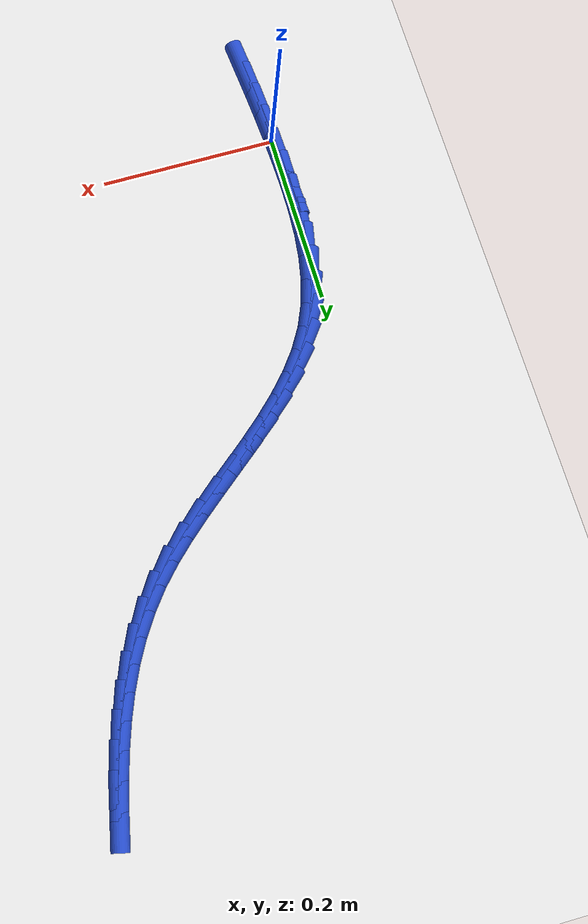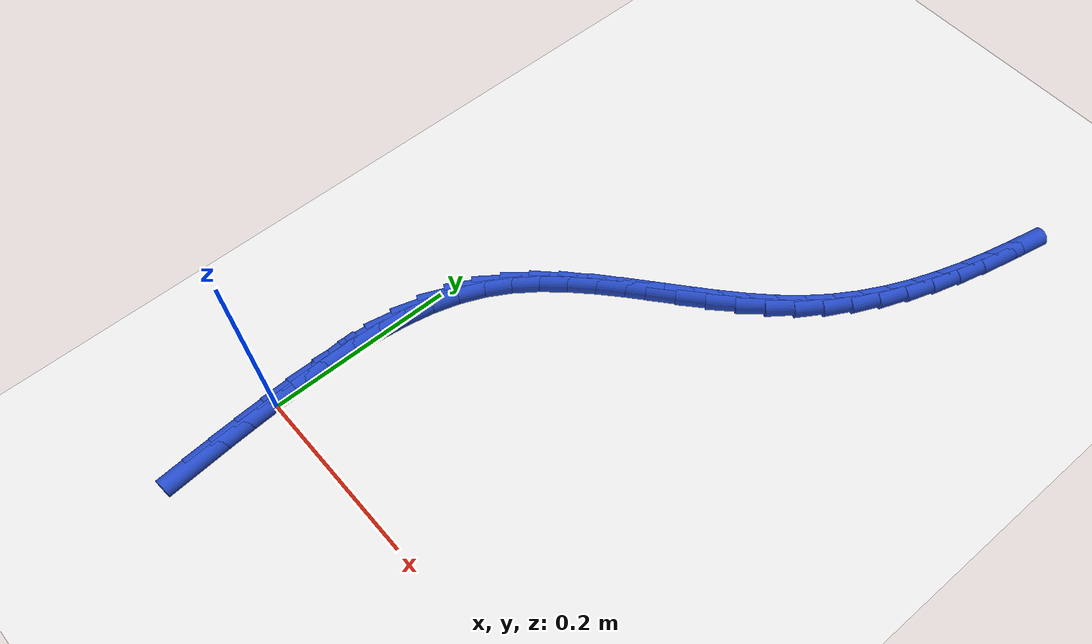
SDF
<sdf version="1.6">
 <world name="default">
  <model name="ground_plane">
   <static>1</static>
   <link name="link">
    <collision name="collision">
     <geometry><plane><normal>0 0 1</normal><size>100 100</size></plane></geometry>
     <surface><friction><ode><mu>100</mu><mu2>50</mu2></ode></friction></surface>
    </collision>
    <visual name="visual">
     <cast_shadows>0</cast_shadows>
     <geometry><plane><normal>0 0 1</normal><size>100 100</size></plane></geometry>
     <material>
      <script><uri>file://media/materials/scripts/gazebo.material</uri><name>Gazebo/WhiteGlow</name></script>
     </material>
    </visual>
   </link>
  </model>
  <model name="line">
   <link name="link_0">
    <pose>8.456776945386935e-18 -2.7755575615628914e-17 0.01 0 1.57 -1.5227607795798939</pose>
    <collision name="collision">
     <geometry><cylinder><radius>0.01</radius><length>0.08</length></cylinder></geometry>
    </collision>
    <visual name="visual">
     <material>
      <script><name>Gazebo/Blue</name><uri>file://media/materials/scripts/gazebo.material</uri></script>
     </material>
     <geometry><cylinder><radius>0.01</radius><length>0.08</length></cylinder></geometry>
    </visual>
   </link>
   <link name="link_1">
    <pose>-0.0014766795499560638 0.030717743223473117 0.01 0 1.57 -1.5451004872439487</pose>
    <collision name="collision">
     <geometry><cylinder><radius>0.01</radius><length>0.08</length></cylinder></geometry>
    </collision>
    <visual name="visual">
     <material>
      <script><name>Gazebo/Blue</name><uri>file://media/materials/scripts/gazebo.material</uri></script>
     </material>
     <geometry><cylinder><radius>0.01</radius><length>0.08</length></cylinder></geometry>
    </visual>
   </link>
   <link name="link_2">
    <pose>-0.0022717804618448533 0.06165372051326525 0.01 0 1.57 1.5617429754365542</pose>
    <collision name="collision">
     <geometry><cylinder><radius>0.01</radius><length>0.08</length></cylinder></geometry>
    </collision>
    <visual name="visual">
     <material>
      <script><name>Gazebo/Blue</name><uri>file://media/materials/scripts/gazebo.material</uri></script>
     </material>
     <geometry><cylinder><radius>0.01</radius><length>0.08</length></cylinder></geometry>
    </visual>
   </link>
   <link name="link_3">
    <pose>-0.001992421770971372 0.09250981428451353 0.01 0 1.57 1.5135489547175613</pose>
    <collision name="collision">
     <geometry><cylinder><radius>0.01</radius><length>0.08</length></cylinder></geometry>
    </collision>
    <visual name="visual">
     <material>
      <script><name>Gazebo/Blue</name><uri>file://media/materials/scripts/gazebo.material</uri></script>
     </material>
     <geometry><cylinder><radius>0.01</radius><length>0.08</length></cylinder></geometry>
    </visual>
   </link>
   <link name="link_4">
    <pose>-0.0002457225126406325 0.12298790695235498 0.01 0 1.57 1.4503525471026657</pose>
    <collision name="collision">
     <geometry><cylinder><radius>0.01</radius><length>0.08</length></cylinder></geometry>
    </collision>
    <visual name="visual">
     <material>
      <script><name>Gazebo/Blue</name><uri>file://media/materials/scripts/gazebo.material</uri></script>
     </material>
     <geometry><cylinder><radius>0.01</radius><length>0.08</length></cylinder></geometry>
    </visual>
   </link>
   <link name="link_5">
    <pose>0.003361198277842349 0.15278988093192675 0.01 0 1.57 1.3702515587760018</pose>
    <collision name="collision">
     <geometry><cylinder><radius>0.01</radius><length>0.08</length></cylinder></geometry>
    </collision>
    <visual name="visual">
     <material>
      <script><name>Gazebo/Blue</name><uri>file://media/materials/scripts/gazebo.material</uri></script>
     </material>
     <geometry><cylinder><radius>0.01</radius><length>0.08</length></cylinder></geometry>
    </visual>
   </link>
   <link name="link_6">
    <pose>0.009221221565172568 0.18161761863836592 0.01 0 1.57 1.2713883890087878</pose>
    <collision name="collision">
     <geometry><cylinder><radius>0.01</radius><length>0.08</length></cylinder></geometry>
    </collision>
    <visual name="visual">
     <material>
      <script><name>Gazebo/Blue</name><uri>file://media/materials/scripts/gazebo.material</uri></script>
     </material>
     <geometry><cylinder><radius>0.01</radius><length>0.08</length></cylinder></geometry>
    </visual>
   </link>
   <link name="link_7">
    <pose>0.01772722831404501 0.20917300248680967 0.01 0 1.57 1.1527355143739297</pose>
    <collision name="collision">
     <geometry><cylinder><radius>0.01</radius><length>0.08</length></cylinder></geometry>
    </collision>
    <visual name="visual">
     <material>
      <script><name>Gazebo/Blue</name><uri>file://media/materials/scripts/gazebo.material</uri></script>
     </material>
     <geometry><cylinder><radius>0.01</radius><length>0.08</length></cylinder></geometry>
    </visual>
   </link>
   <link name="link_8">
    <pose>0.029271236593928593 0.23515846916683084 0.01 0 1.57 1.02523981779138</pose>
    <collision name="collision">
     <geometry><cylinder><radius>0.01</radius><length>0.08</length></cylinder></geometry>
    </collision>
    <visual name="visual">
     <material>
      <script><name>Gazebo/Blue</name><uri>file://media/materials/scripts/gazebo.material</uri></script>
     </material>
     <geometry><cylinder><radius>0.01</radius><length>0.08</length></cylinder></geometry>
    </visual>
   </link>
   <link name="link_9">
    <pose>0.044004804190127124 0.25943091327241796 0.01 0 1.57 0.915575742328255</pose>
    <collision name="collision">
     <geometry><cylinder><radius>0.01</radius><length>0.08</length></cylinder></geometry>
    </collision>
    <visual name="visual">
     <material>
      <script><name>Gazebo/Blue</name><uri>file://media/materials/scripts/gazebo.material</uri></script>
     </material>
     <geometry><cylinder><radius>0.01</radius><length>0.08</length></cylinder></geometry>
    </visual>
   </link>
   <link name="link_10">
    <pose>0.0615115360696729 0.28221204973544534 0.01 0 1.57 0.8284876100115119</pose>
    <collision name="collision">
     <geometry><cylinder><radius>0.01</radius><length>0.08</length></cylinder></geometry>
    </collision>
    <visual name="visual">
     <material>
      <script><name>Gazebo/Blue</name><uri>file://media/materials/scripts/gazebo.material</uri></script>
     </material>
     <geometry><cylinder><radius>0.01</radius><length>0.08</length></cylinder></geometry>
    </visual>
   </link>
   <link name="link_11">
    <pose>0.0812930656886783 0.3037762472881533 0.01 0 1.57 0.7632030751500273</pose>
    <collision name="collision">
     <geometry><cylinder><radius>0.01</radius><length>0.08</length></cylinder></geometry>
    </collision>
    <visual name="visual">
     <material>
      <script><name>Gazebo/Blue</name><uri>file://media/materials/scripts/gazebo.material</uri></script>
     </material>
     <geometry><cylinder><radius>0.01</radius><length>0.08</length></cylinder></geometry>
    </visual>
   </link>
   <link name="link_12">
    <pose>0.10285102650325569 0.32439787466278236 0.01 0 1.57 0.718132737947095</pose>
    <collision name="collision">
     <geometry><cylinder><radius>0.01</radius><length>0.08</length></cylinder></geometry>
    </collision>
    <visual name="visual">
     <material>
      <script><name>Gazebo/Blue</name><uri>file://media/materials/scripts/gazebo.material</uri></script>
     </material>
     <geometry><cylinder><radius>0.01</radius><length>0.08</length></cylinder></geometry>
    </visual>
   </link>
   <link name="link_13">
    <pose>0.12568705196951738 0.34435130059157315 0.01 0 1.57 0.6917275055884001</pose>
    <collision name="collision">
     <geometry><cylinder><radius>0.01</radius><length>0.08</length></cylinder></geometry>
    </collision>
    <visual name="visual">
     <material>
      <script><name>Gazebo/Blue</name><uri>file://media/materials/scripts/gazebo.material</uri></script>
     </material>
     <geometry><cylinder><radius>0.01</radius><length>0.08</length></cylinder></geometry>
    </visual>
   </link>
   <link name="link_14">
    <pose>0.14930277554357585 0.36391089380676617 0.01 0 1.57 0.6829154623494383</pose>
    <collision name="collision">
     <geometry><cylinder><radius>0.01</radius><length>0.08</length></cylinder></geometry>
    </collision>
    <visual name="visual">
     <material>
      <script><name>Gazebo/Blue</name><uri>file://media/materials/scripts/gazebo.material</uri></script>
     </material>
     <geometry><cylinder><radius>0.01</radius><length>0.08</length></cylinder></geometry>
    </visual>
   </link>
   <link name="link_15">
    <pose>0.17319983068154324 0.38335102304060165 0.01 0 1.57 0.6912811827394161</pose>
    <collision name="collision">
     <geometry><cylinder><radius>0.01</radius><length>0.08</length></cylinder></geometry>
    </collision>
    <visual name="visual">
     <material>
      <script><name>Gazebo/Blue</name><uri>file://media/materials/scripts/gazebo.material</uri></script>
     </material>
     <geometry><cylinder><radius>0.01</radius><length>0.08</length></cylinder></geometry>
    </visual>
   </link>
   <link name="link_16">
    <pose>0.1968798508395321 0.4029460570253205 0.01 0 1.57 0.7171075780058435</pose>
    <collision name="collision">
     <geometry><cylinder><radius>0.01</radius><length>0.08</length></cylinder></geometry>
    </collision>
    <visual name="visual">
     <material>
      <script><name>Gazebo/Blue</name><uri>file://media/materials/scripts/gazebo.material</uri></script>
     </material>
     <geometry><cylinder><radius>0.01</radius><length>0.08</length></cylinder></geometry>
    </visual>
   </link>
   <link name="link_17">
    <pose>0.21984446947365482 0.42297036449316294 0.01 0 1.57 0.7613225484306678</pose>
    <collision name="collision">
     <geometry><cylinder><radius>0.01</radius><length>0.08</length></cylinder></geometry>
    </collision>
    <visual name="visual">
     <material>
      <script><name>Gazebo/Blue</name><uri>file://media/materials/scripts/gazebo.material</uri></script>
     </material>
     <geometry><cylinder><radius>0.01</radius><length>0.08</length></cylinder></geometry>
    </visual>
   </link>
   <link name="link_18">
    <pose>0.24159532004002357 0.4436983141763696 0.01 0 1.57 0.8253160443918094</pose>
    <collision name="collision">
     <geometry><cylinder><radius>0.01</radius><length>0.08</length></cylinder></geometry>
    </collision>
    <visual name="visual">
     <material>
      <script><name>Gazebo/Blue</name><uri>file://media/materials/scripts/gazebo.material</uri></script>
     </material>
     <geometry><cylinder><radius>0.01</radius><length>0.08</length></cylinder></geometry>
    </visual>
   </link>
   <link name="link_19">
    <pose>0.2616340359947508 0.46540427480718094 0.01 0 1.57 0.9069009901010257</pose>
    <collision name="collision">
     <geometry><cylinder><radius>0.01</radius><length>0.08</length></cylinder></geometry>
    </collision>
    <visual name="visual">
     <material>
      <script><name>Gazebo/Blue</name><uri>file://media/materials/scripts/gazebo.material</uri></script>
     </material>
     <geometry><cylinder><radius>0.01</radius><length>0.08</length></cylinder></geometry>
    </visual>
   </link>
   <link name="link_20">
    <pose>0.2795564527115686 0.4883122586597587 0.01 0 1.57 0.9886346267813351</pose>
    <collision name="collision">
     <geometry><cylinder><radius>0.01</radius><length>0.08</length></cylinder></geometry>
    </collision>
    <visual name="visual">
     <material>
      <script><name>Gazebo/Blue</name><uri>file://media/materials/scripts/gazebo.material</uri></script>
     </material>
     <geometry><cylinder><radius>0.01</radius><length>0.08</length></cylinder></geometry>
    </visual>
   </link>
   <link name="link_21">
    <pose>0.2954142285881841 0.5124026138284027 0.01 0 1.57 1.063883537466776</pose>
    <collision name="collision">
     <geometry><cylinder><radius>0.01</radius><length>0.08</length></cylinder></geometry>
    </collision>
    <visual name="visual">
     <material>
      <script><name>Gazebo/Blue</name><uri>file://media/materials/scripts/gazebo.material</uri></script>
     </material>
     <geometry><cylinder><radius>0.01</radius><length>0.08</length></cylinder></geometry>
    </visual>
   </link>
   <link name="link_22">
    <pose>0.3093967064856879 0.5375820879746012 0.01 0 1.57 1.1316185422971006</pose>
    <collision name="collision">
     <geometry><cylinder><radius>0.01</radius><length>0.08</length></cylinder></geometry>
    </collision>
    <visual name="visual">
     <material>
      <script><name>Gazebo/Blue</name><uri>file://media/materials/scripts/gazebo.material</uri></script>
     </material>
     <geometry><cylinder><radius>0.01</radius><length>0.08</length></cylinder></geometry>
    </visual>
   </link>
   <link name="link_23">
    <pose>0.3216932583514957 0.5637574132114931 0.01 0 1.57 1.1912825503669429</pose>
    <collision name="collision">
     <geometry><cylinder><radius>0.01</radius><length>0.08</length></cylinder></geometry>
    </collision>
    <visual name="visual">
     <material>
      <script><name>Gazebo/Blue</name><uri>file://media/materials/scripts/gazebo.material</uri></script>
     </material>
     <geometry><cylinder><radius>0.01</radius><length>0.08</length></cylinder></geometry>
    </visual>
   </link>
   <link name="link_24">
    <pose>0.3324932561330238 0.590835321652218 0.01 0 1.57 1.2426991619687908</pose>
    <collision name="collision">
     <geometry><cylinder><radius>0.01</radius><length>0.08</length></cylinder></geometry>
    </collision>
    <visual name="visual">
     <material>
      <script><name>Gazebo/Blue</name><uri>file://media/materials/scripts/gazebo.material</uri></script>
     </material>
     <geometry><cylinder><radius>0.01</radius><length>0.08</length></cylinder></geometry>
    </visual>
   </link>
   <link name="link_25">
    <pose>0.3419860717776878 0.6187225454099143 0.01 0 1.57 1.2859590976979571</pose>
    <collision name="collision">
     <geometry><cylinder><radius>0.01</radius><length>0.08</length></cylinder></geometry>
    </collision>
    <visual name="visual">
     <material>
      <script><name>Gazebo/Blue</name><uri>file://media/materials/scripts/gazebo.material</uri></script>
     </material>
     <geometry><cylinder><radius>0.01</radius><length>0.08</length></cylinder></geometry>
    </visual>
   </link>
   <link name="link_26">
    <pose>0.3503610772329039 0.6473258165977218 0.01 0 1.57 1.3213125501815395</pose>
    <collision name="collision">
     <geometry><cylinder><radius>0.01</radius><length>0.08</length></cylinder></geometry>
    </collision>
    <visual name="visual">
     <material>
      <script><name>Gazebo/Blue</name><uri>file://media/materials/scripts/gazebo.material</uri></script>
     </material>
     <geometry><cylinder><radius>0.01</radius><length>0.08</length></cylinder></geometry>
    </visual>
   </link>
   <link name="link_27">
    <pose>0.35780764444608765 0.6765518673287787 0.01 0 1.57 1.3490820929666452</pose>
    <collision name="collision">
     <geometry><cylinder><radius>0.01</radius><length>0.08</length></cylinder></geometry>
    </collision>
    <visual name="visual">
     <material>
      <script><name>Gazebo/Blue</name><uri>file://media/materials/scripts/gazebo.material</uri></script>
     </material>
     <geometry><cylinder><radius>0.01</radius><length>0.08</length></cylinder></geometry>
    </visual>
   </link>
   <link name="link_267">
    <pose>0.006637465164022607 -0.08964539552963795 0.01 0 1.57 -1.48282398099189</pose>
    <collision name="collision">
     <geometry><cylinder><radius>0.01</radius><length>0.08</length></cylinder></geometry>
    </collision>
    <visual name="visual">
     <material>
      <script><name>Gazebo/Blue</name><uri>file://media/materials/scripts/gazebo.material</uri></script>
     </material>
     <geometry><cylinder><radius>0.01</radius><length>0.08</length></cylinder></geometry>
    </visual>
   </link>
   <link name="link_268">
    <pose>0.004033019846504613 -0.060116534976911766 0.01 0 1.57 -1.4974973467778407</pose>
    <collision name="collision">
     <geometry><cylinder><radius>0.01</radius><length>0.08</length></cylinder></geometry>
    </collision>
    <visual name="visual">
     <material>
      <script><name>Gazebo/Blue</name><uri>file://media/materials/scripts/gazebo.material</uri></script>
     </material>
     <geometry><cylinder><radius>0.01</radius><length>0.08</length></cylinder></geometry>
    </visual>
   </link>
   <link name="link_269">
    <pose>0.001841183309724678 -0.03026741920583773 0.01 0 1.57 -1.5100406569428366</pose>
    <collision name="collision">
     <geometry><cylinder><radius>0.01</radius><length>0.08</length></cylinder></geometry>
    </collision>
    <visual name="visual">
     <material>
      <script><name>Gazebo/Blue</name><uri>file://media/materials/scripts/gazebo.material</uri></script>
     </material>
     <geometry><cylinder><radius>0.01</radius><length>0.08</length></cylinder></geometry>
    </visual>
   </link>
   <link name="link_270">
    <pose>1.8214596497756474e-17 -1.8041124150158794e-16 0.01 0 1.57 -1.5204070661487101</pose>
    <collision name="collision">
     <geometry><cylinder><radius>0.01</radius><length>0.08</length></cylinder></geometry>
    </collision>
    <visual name="visual">
     <material>
      <script><name>Gazebo/Blue</name><uri>file://media/materials/scripts/gazebo.material</uri></script>
     </material>
     <geometry><cylinder><radius>0.01</radius><length>0.08</length></cylinder></geometry>
    </visual>
   </link>
   <link name="link_271">
    <pose>-0.0015524856363523963 0.03078377085702019 0.01 0 1.57 -1.5285978015742616</pose>
    <collision name="collision">
     <geometry><cylinder><radius>0.01</radius><length>0.08</length></cylinder></geometry>
    </collision>
    <visual name="visual">
     <material>
      <script><name>Gazebo/Blue</name><uri>file://media/materials/scripts/gazebo.material</uri></script>
     </material>
     <geometry><cylinder><radius>0.01</radius><length>0.08</length></cylinder></geometry>
    </visual>
   </link>
   <link name="link_272">
    <pose>-0.0028782291530154262 0.06218194158163998 0.01 0 1.57 -1.5245421221733095</pose>
    <collision name="collision">
     <geometry><cylinder><radius>0.01</radius><length>0.08</length></cylinder></geometry>
    </collision>
    <visual name="visual">
     <material>
      <script><name>Gazebo/Blue</name><uri>file://media/materials/scripts/gazebo.material</uri></script>
     </material>
     <geometry><cylinder><radius>0.01</radius><length>0.08</length></cylinder></geometry>
    </visual>
   </link>
  </model>
 </world>
</sdf>
